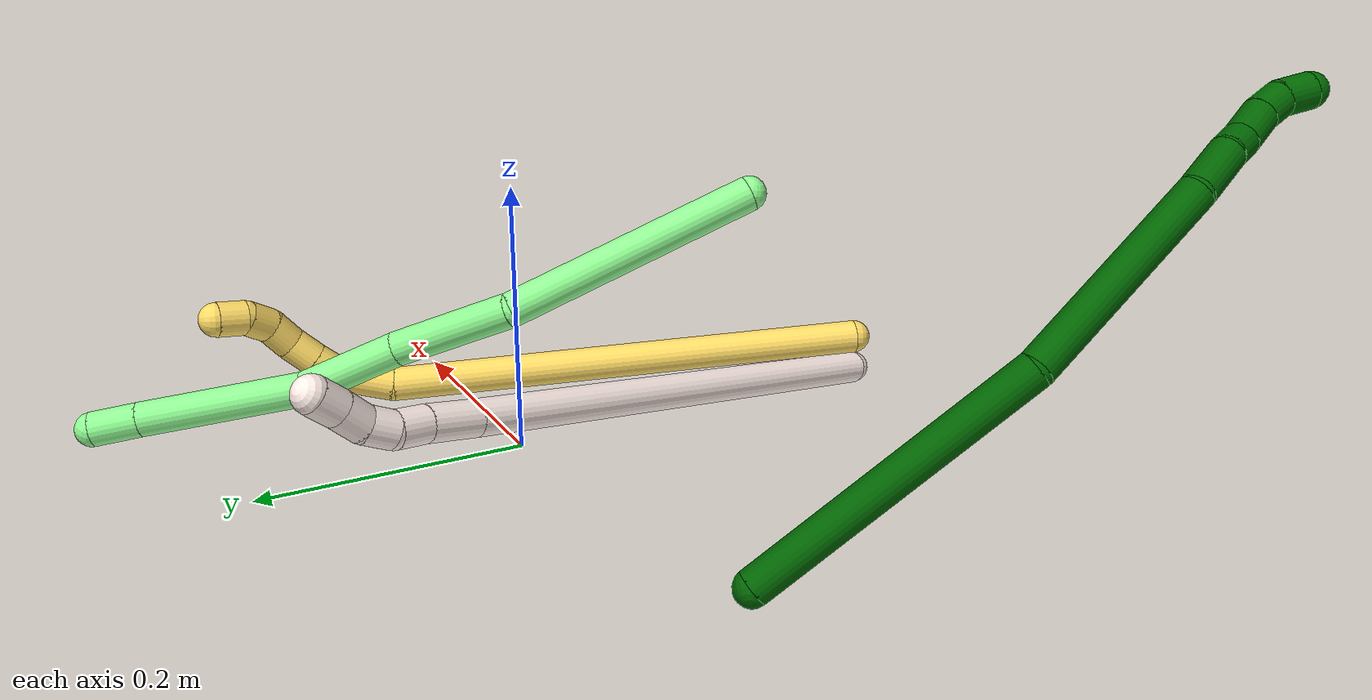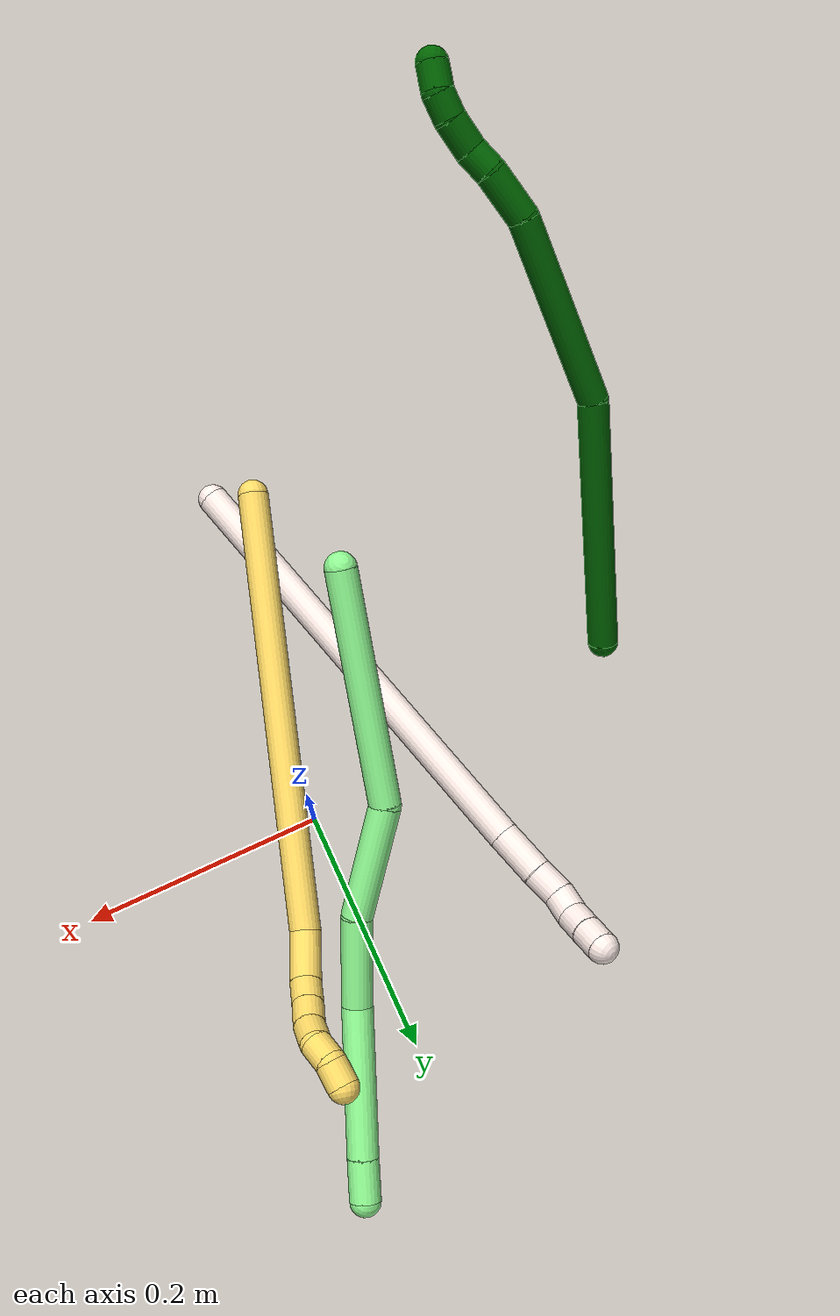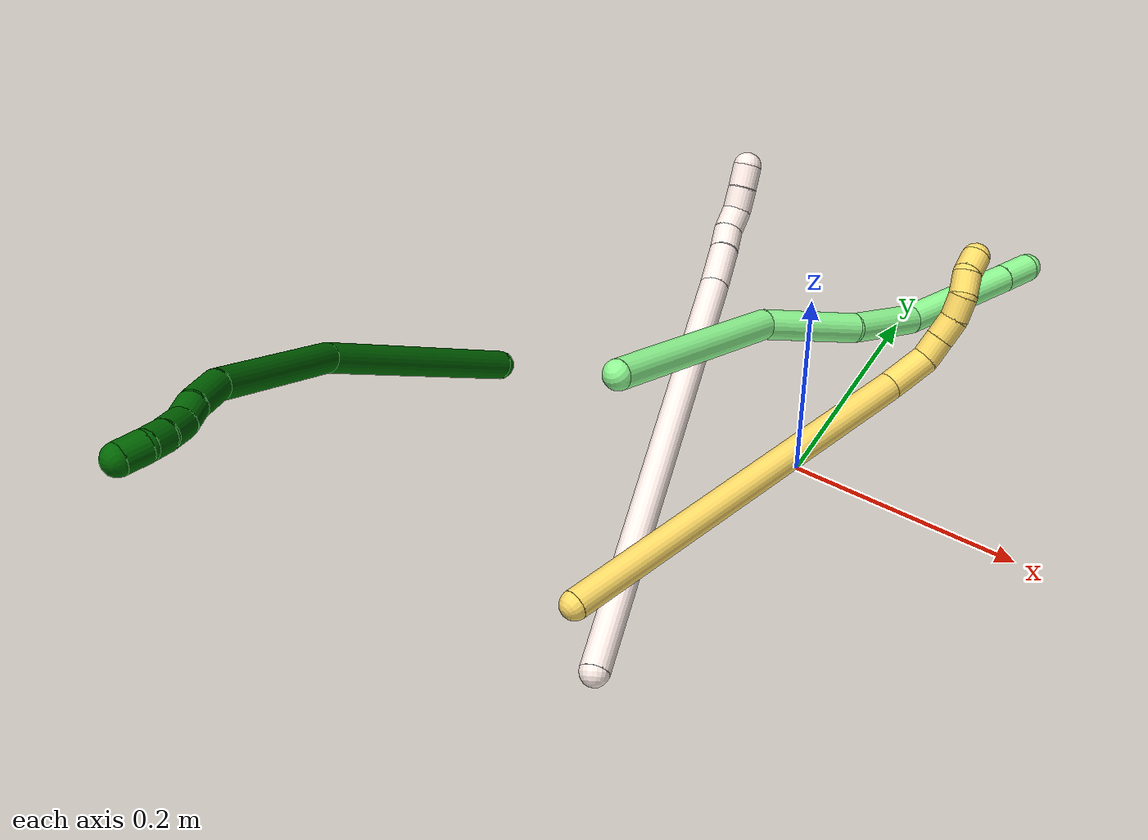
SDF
<sdf version="1.7">
 <world name="default">
  <model name="5">
   <static>0</static>
   <link name="5">
    <collision name="collision-cylinder-e_1_1_4">
     <pose>-0.006708 0.020403 0.176543 -0.115057 -0.037726 0.002173</pose>
     <geometry><cylinder><radius>0.0125</radius><length>0.355689</length></cylinder></geometry>
     <surface>
      <friction><ode><mu>1.16</mu><mu2>1.16</mu2><slip1>0</slip1><slip2>0</slip2></ode></friction>
      <contact><ode><kp>1e+06</kp><kd>1</kd><max_vel>0</max_vel><min_depth>0.001</min_depth></ode></contact>
     </surface>
    </collision>
    <visual name="visual-cylinder-e_1_1_4">
     <pose>-0.006708 0.020403 0.176543 -0.115057 -0.037726 0.002173</pose>
     <geometry><cylinder><radius>0.0125</radius><length>0.355689</length></cylinder></geometry>
     <material><ambient>1 0.858824 0.4 1</ambient></material>
    </visual>
    <collision name="collision-cylinder-e_2_4_5">
     <pose>-0.008625 0.042365 0.372695 -0.079361 0.238878 -0.009529</pose>
     <geometry><cylinder><radius>0.0125</radius><length>0.040491</length></cylinder></geometry>
     <surface>
      <friction><ode><mu>1.16</mu><mu2>1.16</mu2><slip1>0</slip1><slip2>0</slip2></ode></friction>
      <contact><ode><kp>1e+06</kp><kd>1</kd><max_vel>0</max_vel><min_depth>0.001</min_depth></ode></contact>
     </surface>
    </collision>
    <visual name="visual-cylinder-e_2_4_5">
     <pose>-0.008625 0.042365 0.372695 -0.079361 0.238878 -0.009529</pose>
     <geometry><cylinder><radius>0.0125</radius><length>0.040491</length></cylinder></geometry>
     <material><ambient>1 0.858824 0.4 1</ambient></material>
    </visual>
    <collision name="collision-cylinder-e_3_5_6">
     <pose>0.001939 0.04152 0.401085 0.267231 0.565169 0.078017</pose>
     <geometry><cylinder><radius>0.0125</radius><length>0.021562</length></cylinder></geometry>
     <surface>
      <friction><ode><mu>1.16</mu><mu2>1.16</mu2><slip1>0</slip1><slip2>0</slip2></ode></friction>
      <contact><ode><kp>1e+06</kp><kd>1</kd><max_vel>0</max_vel><min_depth>0.001</min_depth></ode></contact>
     </surface>
    </collision>
    <visual name="visual-cylinder-e_3_5_6">
     <pose>0.001939 0.04152 0.401085 0.267231 0.565169 0.078017</pose>
     <geometry><cylinder><radius>0.0125</radius><length>0.021562</length></cylinder></geometry>
     <material><ambient>1 0.858824 0.4 1</ambient></material>
    </visual>
    <collision name="collision-cylinder-e_4_6_7">
     <pose>0.013751 0.036788 0.417982 0.279373 0.620829 0.090145</pose>
     <geometry><cylinder><radius>0.0125</radius><length>0.02076</length></cylinder></geometry>
     <surface>
      <friction><ode><mu>1.16</mu><mu2>1.16</mu2><slip1>0</slip1><slip2>0</slip2></ode></friction>
      <contact><ode><kp>1e+06</kp><kd>1</kd><max_vel>0</max_vel><min_depth>0.001</min_depth></ode></contact>
     </surface>
    </collision>
    <visual name="visual-cylinder-e_4_6_7">
     <pose>0.013751 0.036788 0.417982 0.279373 0.620829 0.090145</pose>
     <geometry><cylinder><radius>0.0125</radius><length>0.02076</length></cylinder></geometry>
     <material><ambient>1 0.858824 0.4 1</ambient></material>
    </visual>
    <collision name="collision-cylinder-e_5_7_8">
     <pose>0.02578 0.029709 0.433113 0.595258 0.615541 0.194393</pose>
     <geometry><cylinder><radius>0.0125</radius><length>0.020753</length></cylinder></geometry>
     <surface>
      <friction><ode><mu>1.16</mu><mu2>1.16</mu2><slip1>0</slip1><slip2>0</slip2></ode></friction>
      <contact><ode><kp>1e+06</kp><kd>1</kd><max_vel>0</max_vel><min_depth>0.001</min_depth></ode></contact>
     </surface>
    </collision>
    <visual name="visual-cylinder-e_5_7_8">
     <pose>0.02578 0.029709 0.433113 0.595258 0.615541 0.194393</pose>
     <geometry><cylinder><radius>0.0125</radius><length>0.020753</length></cylinder></geometry>
     <material><ambient>1 0.858824 0.4 1</ambient></material>
    </visual>
    <collision name="collision-cylinder-e_6_8_9">
     <pose>0.033912 0.018962 0.448158 0.641375 0.210362 0.070102</pose>
     <geometry><cylinder><radius>0.0125</radius><length>0.020497</length></cylinder></geometry>
     <surface>
      <friction><ode><mu>1.16</mu><mu2>1.16</mu2><slip1>0</slip1><slip2>0</slip2></ode></friction>
      <contact><ode><kp>1e+06</kp><kd>1</kd><max_vel>0</max_vel><min_depth>0.001</min_depth></ode></contact>
     </surface>
    </collision>
    <visual name="visual-cylinder-e_6_8_9">
     <pose>0.033912 0.018962 0.448158 0.641375 0.210362 0.070102</pose>
     <geometry><cylinder><radius>0.0125</radius><length>0.020497</length></cylinder></geometry>
     <material><ambient>1 0.858824 0.4 1</ambient></material>
    </visual>
    <collision name="collision-cylinder-e_7_9_2">
     <pose>0.03523 0.010205 0.465895 0.277131 -0.081287 -0.011342</pose>
     <geometry><cylinder><radius>0.0125</radius><length>0.020247</length></cylinder></geometry>
     <surface>
      <friction><ode><mu>1.16</mu><mu2>1.16</mu2><slip1>0</slip1><slip2>0</slip2></ode></friction>
      <contact><ode><kp>1e+06</kp><kd>1</kd><max_vel>0</max_vel><min_depth>0.001</min_depth></ode></contact>
     </surface>
    </collision>
    <visual name="visual-cylinder-e_7_9_2">
     <pose>0.03523 0.010205 0.465895 0.277131 -0.081287 -0.011342</pose>
     <geometry><cylinder><radius>0.0125</radius><length>0.020247</length></cylinder></geometry>
     <material><ambient>1 0.858824 0.4 1</ambient></material>
    </visual>
    <collision name="collision-sphere-2">
     <pose>0.034408 0.007444 0.4756 0 -0 0</pose>
     <geometry><sphere><radius>0.0125</radius></sphere></geometry>
     <surface>
      <friction><ode><mu>1.16</mu><mu2>1.16</mu2><slip1>0</slip1><slip2>0</slip2></ode></friction>
      <contact><ode><kp>1e+06</kp><kd>1</kd><max_vel>0</max_vel><min_depth>0.001</min_depth></ode></contact>
     </surface>
    </collision>
    <visual name="visual-sphere-2">
     <pose>0.034408 0.007444 0.4756 0 -0 0</pose>
     <geometry><sphere><radius>0.0125</radius></sphere></geometry>
     <material><ambient>1 0.858824 0.4 1</ambient></material>
    </visual>
    <collision name="collision-sphere-9">
     <pose>0.036052 0.012965 0.456189 0 -0 0</pose>
     <geometry><sphere><radius>0.0125</radius></sphere></geometry>
     <surface>
      <friction><ode><mu>1.16</mu><mu2>1.16</mu2><slip1>0</slip1><slip2>0</slip2></ode></friction>
      <contact><ode><kp>1e+06</kp><kd>1</kd><max_vel>0</max_vel><min_depth>0.001</min_depth></ode></contact>
     </surface>
    </collision>
    <visual name="visual-sphere-9">
     <pose>0.036052 0.012965 0.456189 0 -0 0</pose>
     <geometry><sphere><radius>0.0125</radius></sphere></geometry>
     <material><ambient>1 0.858824 0.4 1</ambient></material>
    </visual>
    <collision name="collision-sphere-4">
     <pose>-0.013416 0.040805 0.353086 0 -0 0</pose>
     <geometry><sphere><radius>0.0125</radius></sphere></geometry>
     <surface>
      <friction><ode><mu>1.16</mu><mu2>1.16</mu2><slip1>0</slip1><slip2>0</slip2></ode></friction>
      <contact><ode><kp>1e+06</kp><kd>1</kd><max_vel>0</max_vel><min_depth>0.001</min_depth></ode></contact>
     </surface>
    </collision>
    <visual name="visual-sphere-4">
     <pose>-0.013416 0.040805 0.353086 0 -0 0</pose>
     <geometry><sphere><radius>0.0125</radius></sphere></geometry>
     <material><ambient>1 0.858824 0.4 1</ambient></material>
    </visual>
    <collision name="collision-sphere-1">
     <geometry><sphere><radius>0.0125</radius></sphere></geometry>
     <surface>
      <friction><ode><mu>1.16</mu><mu2>1.16</mu2><slip1>0</slip1><slip2>0</slip2></ode></friction>
      <contact><ode><kp>1e+06</kp><kd>1</kd><max_vel>0</max_vel><min_depth>0.001</min_depth></ode></contact>
     </surface>
    </collision>
    <visual name="visual-sphere-1">
     <geometry><sphere><radius>0.0125</radius></sphere></geometry>
     <material><ambient>1 0.858824 0.4 1</ambient></material>
    </visual>
    <collision name="collision-sphere-8">
     <pose>0.031772 0.024958 0.440128 0 -0 0</pose>
     <geometry><sphere><radius>0.0125</radius></sphere></geometry>
     <surface>
      <friction><ode><mu>1.16</mu><mu2>1.16</mu2><slip1>0</slip1><slip2>0</slip2></ode></friction>
      <contact><ode><kp>1e+06</kp><kd>1</kd><max_vel>0</max_vel><min_depth>0.001</min_depth></ode></contact>
     </surface>
    </collision>
    <visual name="visual-sphere-8">
     <pose>0.031772 0.024958 0.440128 0 -0 0</pose>
     <geometry><sphere><radius>0.0125</radius></sphere></geometry>
     <material><ambient>1 0.858824 0.4 1</ambient></material>
    </visual>
    <collision name="collision-sphere-5">
     <pose>-0.003835 0.043924 0.392304 0 -0 0</pose>
     <geometry><sphere><radius>0.0125</radius></sphere></geometry>
     <surface>
      <friction><ode><mu>1.16</mu><mu2>1.16</mu2><slip1>0</slip1><slip2>0</slip2></ode></friction>
      <contact><ode><kp>1e+06</kp><kd>1</kd><max_vel>0</max_vel><min_depth>0.001</min_depth></ode></contact>
     </surface>
    </collision>
    <visual name="visual-sphere-5">
     <pose>-0.003835 0.043924 0.392304 0 -0 0</pose>
     <geometry><sphere><radius>0.0125</radius></sphere></geometry>
     <material><ambient>1 0.858824 0.4 1</ambient></material>
    </visual>
    <collision name="collision-sphere-6">
     <pose>0.007713 0.039116 0.409866 0 -0 0</pose>
     <geometry><sphere><radius>0.0125</radius></sphere></geometry>
     <surface>
      <friction><ode><mu>1.16</mu><mu2>1.16</mu2><slip1>0</slip1><slip2>0</slip2></ode></friction>
      <contact><ode><kp>1e+06</kp><kd>1</kd><max_vel>0</max_vel><min_depth>0.001</min_depth></ode></contact>
     </surface>
    </collision>
    <visual name="visual-sphere-6">
     <pose>0.007713 0.039116 0.409866 0 -0 0</pose>
     <geometry><sphere><radius>0.0125</radius></sphere></geometry>
     <material><ambient>1 0.858824 0.4 1</ambient></material>
    </visual>
    <collision name="collision-sphere-7">
     <pose>0.019789 0.034459 0.426098 0 -0 0</pose>
     <geometry><sphere><radius>0.0125</radius></sphere></geometry>
     <surface>
      <friction><ode><mu>1.16</mu><mu2>1.16</mu2><slip1>0</slip1><slip2>0</slip2></ode></friction>
      <contact><ode><kp>1e+06</kp><kd>1</kd><max_vel>0</max_vel><min_depth>0.001</min_depth></ode></contact>
     </surface>
    </collision>
    <visual name="visual-sphere-7">
     <pose>0.019789 0.034459 0.426098 0 -0 0</pose>
     <geometry><sphere><radius>0.0125</radius></sphere></geometry>
     <material><ambient>1 0.858824 0.4 1</ambient></material>
    </visual>
    <inertial>
     <pose>-0.000929 0.023686 0.245637 0 -0 0</pose>
     <mass>0.5</mass>
     <inertia>
      <ixx>0.003786</ixx>
      <ixy>0</ixy>
      <ixz>0</ixz>
      <iyy>0.003763</iyy>
      <iyz>0</iyz>
      <izz>-0.000255</izz>
     </inertia>
    </inertial>
   </link>
   <pose>-0.06219 -0.257452 0.0643 -1.46651 -1.0723 -0.310194</pose>
  </model>
  <model name="6">
   <static>0</static>
   <link name="6">
    <collision name="collision-cylinder-e_1_1_4">
     <pose>0.093147 0.004115 0.050858 -0.080738 1.06966 -0.047848</pose>
     <geometry><cylinder><radius>0.0125</radius><length>0.212413</length></cylinder></geometry>
     <surface>
      <friction><ode><mu>1.16</mu><mu2>1.16</mu2><slip1>0</slip1><slip2>0</slip2></ode></friction>
      <contact><ode><kp>1e+06</kp><kd>1</kd><max_vel>0</max_vel><min_depth>0.001</min_depth></ode></contact>
     </surface>
    </collision>
    <visual name="visual-cylinder-e_1_1_4">
     <pose>0.093147 0.004115 0.050858 -0.080738 1.06966 -0.047848</pose>
     <geometry><cylinder><radius>0.0125</radius><length>0.212413</length></cylinder></geometry>
     <material><ambient>0 0.392157 0.003922 1</ambient></material>
    </visual>
    <collision name="collision-cylinder-e_2_4_5">
     <pose>0.240012 0.014296 0.157334 -0.108623 0.765063 -0.043741</pose>
     <geometry><cylinder><radius>0.0125</radius><length>0.155125</length></cylinder></geometry>
     <surface>
      <friction><ode><mu>1.16</mu><mu2>1.16</mu2><slip1>0</slip1><slip2>0</slip2></ode></friction>
      <contact><ode><kp>1e+06</kp><kd>1</kd><max_vel>0</max_vel><min_depth>0.001</min_depth></ode></contact>
     </surface>
    </collision>
    <visual name="visual-cylinder-e_2_4_5">
     <pose>0.240012 0.014296 0.157334 -0.108623 0.765063 -0.043741</pose>
     <geometry><cylinder><radius>0.0125</radius><length>0.155125</length></cylinder></geometry>
     <material><ambient>0 0.392157 0.003922 1</ambient></material>
    </visual>
    <collision name="collision-cylinder-e_3_5_6">
     <pose>0.304114 0.024716 0.230306 -0.245885 0.525865 -0.066494</pose>
     <geometry><cylinder><radius>0.0125</radius><length>0.04137</length></cylinder></geometry>
     <surface>
      <friction><ode><mu>1.16</mu><mu2>1.16</mu2><slip1>0</slip1><slip2>0</slip2></ode></friction>
      <contact><ode><kp>1e+06</kp><kd>1</kd><max_vel>0</max_vel><min_depth>0.001</min_depth></ode></contact>
     </surface>
    </collision>
    <visual name="visual-cylinder-e_3_5_6">
     <pose>0.304114 0.024716 0.230306 -0.245885 0.525865 -0.066494</pose>
     <geometry><cylinder><radius>0.0125</radius><length>0.04137</length></cylinder></geometry>
     <material><ambient>0 0.392157 0.003922 1</ambient></material>
    </visual>
    <collision name="collision-cylinder-e_4_6_7">
     <pose>0.318549 0.033309 0.256713 -0.43782 0.385049 -0.086684</pose>
     <geometry><cylinder><radius>0.0125</radius><length>0.021576</length></cylinder></geometry>
     <surface>
      <friction><ode><mu>1.16</mu><mu2>1.16</mu2><slip1>0</slip1><slip2>0</slip2></ode></friction>
      <contact><ode><kp>1e+06</kp><kd>1</kd><max_vel>0</max_vel><min_depth>0.001</min_depth></ode></contact>
     </surface>
    </collision>
    <visual name="visual-cylinder-e_4_6_7">
     <pose>0.318549 0.033309 0.256713 -0.43782 0.385049 -0.086684</pose>
     <geometry><cylinder><radius>0.0125</radius><length>0.021576</length></cylinder></geometry>
     <material><ambient>0 0.392157 0.003922 1</ambient></material>
    </visual>
    <collision name="collision-cylinder-e_5_7_8">
     <pose>0.329877 0.039853 0.277143 -0.199866 0.559948 -0.057643</pose>
     <geometry><cylinder><radius>0.0125</radius><length>0.027396</length></cylinder></geometry>
     <surface>
      <friction><ode><mu>1.16</mu><mu2>1.16</mu2><slip1>0</slip1><slip2>0</slip2></ode></friction>
      <contact><ode><kp>1e+06</kp><kd>1</kd><max_vel>0</max_vel><min_depth>0.001</min_depth></ode></contact>
     </surface>
    </collision>
    <visual name="visual-cylinder-e_5_7_8">
     <pose>0.329877 0.039853 0.277143 -0.199866 0.559948 -0.057643</pose>
     <geometry><cylinder><radius>0.0125</radius><length>0.027396</length></cylinder></geometry>
     <material><ambient>0 0.392157 0.003922 1</ambient></material>
    </visual>
    <collision name="collision-cylinder-e_6_8_9">
     <pose>0.34385 0.04481 0.295779 -0.350367 0.713935 -0.13183</pose>
     <geometry><cylinder><radius>0.0125</radius><length>0.020457</length></cylinder></geometry>
     <surface>
      <friction><ode><mu>1.16</mu><mu2>1.16</mu2><slip1>0</slip1><slip2>0</slip2></ode></friction>
      <contact><ode><kp>1e+06</kp><kd>1</kd><max_vel>0</max_vel><min_depth>0.001</min_depth></ode></contact>
     </surface>
    </collision>
    <visual name="visual-cylinder-e_6_8_9">
     <pose>0.34385 0.04481 0.295779 -0.350367 0.713935 -0.13183</pose>
     <geometry><cylinder><radius>0.0125</radius><length>0.020457</length></cylinder></geometry>
     <material><ambient>0 0.392157 0.003922 1</ambient></material>
    </visual>
    <collision name="collision-cylinder-e_7_9_2">
     <pose>0.35889 0.052625 0.307631 -0.843802 0.879203 -0.416078</pose>
     <geometry><cylinder><radius>0.0125</radius><length>0.021663</length></cylinder></geometry>
     <surface>
      <friction><ode><mu>1.16</mu><mu2>1.16</mu2><slip1>0</slip1><slip2>0</slip2></ode></friction>
      <contact><ode><kp>1e+06</kp><kd>1</kd><max_vel>0</max_vel><min_depth>0.001</min_depth></ode></contact>
     </surface>
    </collision>
    <visual name="visual-cylinder-e_7_9_2">
     <pose>0.35889 0.052625 0.307631 -0.843802 0.879203 -0.416078</pose>
     <geometry><cylinder><radius>0.0125</radius><length>0.021663</length></cylinder></geometry>
     <material><ambient>0 0.392157 0.003922 1</ambient></material>
    </visual>
    <collision name="collision-sphere-2">
     <pose>0.367233 0.057787 0.312223 0 -0 0</pose>
     <geometry><sphere><radius>0.0125</radius></sphere></geometry>
     <surface>
      <friction><ode><mu>1.16</mu><mu2>1.16</mu2><slip1>0</slip1><slip2>0</slip2></ode></friction>
      <contact><ode><kp>1e+06</kp><kd>1</kd><max_vel>0</max_vel><min_depth>0.001</min_depth></ode></contact>
     </surface>
    </collision>
    <visual name="visual-sphere-2">
     <pose>0.367233 0.057787 0.312223 0 -0 0</pose>
     <geometry><sphere><radius>0.0125</radius></sphere></geometry>
     <material><ambient>0 0.392157 0.003922 1</ambient></material>
    </visual>
    <collision name="collision-sphere-9">
     <pose>0.350548 0.047464 0.30304 0 -0 0</pose>
     <geometry><sphere><radius>0.0125</radius></sphere></geometry>
     <surface>
      <friction><ode><mu>1.16</mu><mu2>1.16</mu2><slip1>0</slip1><slip2>0</slip2></ode></friction>
      <contact><ode><kp>1e+06</kp><kd>1</kd><max_vel>0</max_vel><min_depth>0.001</min_depth></ode></contact>
     </surface>
    </collision>
    <visual name="visual-sphere-9">
     <pose>0.350548 0.047464 0.30304 0 -0 0</pose>
     <geometry><sphere><radius>0.0125</radius></sphere></geometry>
     <material><ambient>0 0.392157 0.003922 1</ambient></material>
    </visual>
    <collision name="collision-sphere-4">
     <pose>0.186294 0.00823 0.101715 0 -0 0</pose>
     <geometry><sphere><radius>0.0125</radius></sphere></geometry>
     <surface>
      <friction><ode><mu>1.16</mu><mu2>1.16</mu2><slip1>0</slip1><slip2>0</slip2></ode></friction>
      <contact><ode><kp>1e+06</kp><kd>1</kd><max_vel>0</max_vel><min_depth>0.001</min_depth></ode></contact>
     </surface>
    </collision>
    <visual name="visual-sphere-4">
     <pose>0.186294 0.00823 0.101715 0 -0 0</pose>
     <geometry><sphere><radius>0.0125</radius></sphere></geometry>
     <material><ambient>0 0.392157 0.003922 1</ambient></material>
    </visual>
    <collision name="collision-sphere-1">
     <geometry><sphere><radius>0.0125</radius></sphere></geometry>
     <surface>
      <friction><ode><mu>1.16</mu><mu2>1.16</mu2><slip1>0</slip1><slip2>0</slip2></ode></friction>
      <contact><ode><kp>1e+06</kp><kd>1</kd><max_vel>0</max_vel><min_depth>0.001</min_depth></ode></contact>
     </surface>
    </collision>
    <visual name="visual-sphere-1">
     <geometry><sphere><radius>0.0125</radius></sphere></geometry>
     <material><ambient>0 0.392157 0.003922 1</ambient></material>
    </visual>
    <collision name="collision-sphere-8">
     <pose>0.337152 0.042157 0.288519 0 -0 0</pose>
     <geometry><sphere><radius>0.0125</radius></sphere></geometry>
     <surface>
      <friction><ode><mu>1.16</mu><mu2>1.16</mu2><slip1>0</slip1><slip2>0</slip2></ode></friction>
      <contact><ode><kp>1e+06</kp><kd>1</kd><max_vel>0</max_vel><min_depth>0.001</min_depth></ode></contact>
     </surface>
    </collision>
    <visual name="visual-sphere-8">
     <pose>0.337152 0.042157 0.288519 0 -0 0</pose>
     <geometry><sphere><radius>0.0125</radius></sphere></geometry>
     <material><ambient>0 0.392157 0.003922 1</ambient></material>
    </visual>
    <collision name="collision-sphere-5">
     <pose>0.293731 0.020361 0.212954 0 -0 0</pose>
     <geometry><sphere><radius>0.0125</radius></sphere></geometry>
     <surface>
      <friction><ode><mu>1.16</mu><mu2>1.16</mu2><slip1>0</slip1><slip2>0</slip2></ode></friction>
      <contact><ode><kp>1e+06</kp><kd>1</kd><max_vel>0</max_vel><min_depth>0.001</min_depth></ode></contact>
     </surface>
    </collision>
    <visual name="visual-sphere-5">
     <pose>0.293731 0.020361 0.212954 0 -0 0</pose>
     <geometry><sphere><radius>0.0125</radius></sphere></geometry>
     <material><ambient>0 0.392157 0.003922 1</ambient></material>
    </visual>
    <collision name="collision-sphere-6">
     <pose>0.314497 0.02907 0.247658 0 -0 0</pose>
     <geometry><sphere><radius>0.0125</radius></sphere></geometry>
     <surface>
      <friction><ode><mu>1.16</mu><mu2>1.16</mu2><slip1>0</slip1><slip2>0</slip2></ode></friction>
      <contact><ode><kp>1e+06</kp><kd>1</kd><max_vel>0</max_vel><min_depth>0.001</min_depth></ode></contact>
     </surface>
    </collision>
    <visual name="visual-sphere-6">
     <pose>0.314497 0.02907 0.247658 0 -0 0</pose>
     <geometry><sphere><radius>0.0125</radius></sphere></geometry>
     <material><ambient>0 0.392157 0.003922 1</ambient></material>
    </visual>
    <collision name="collision-sphere-7">
     <pose>0.322601 0.037548 0.265768 0 -0 0</pose>
     <geometry><sphere><radius>0.0125</radius></sphere></geometry>
     <surface>
      <friction><ode><mu>1.16</mu><mu2>1.16</mu2><slip1>0</slip1><slip2>0</slip2></ode></friction>
      <contact><ode><kp>1e+06</kp><kd>1</kd><max_vel>0</max_vel><min_depth>0.001</min_depth></ode></contact>
     </surface>
    </collision>
    <visual name="visual-sphere-7">
     <pose>0.322601 0.037548 0.265768 0 -0 0</pose>
     <geometry><sphere><radius>0.0125</radius></sphere></geometry>
     <material><ambient>0 0.392157 0.003922 1</ambient></material>
    </visual>
    <inertial>
     <pose>0.200636 0.015963 0.141167 0 -0 0</pose>
     <mass>0.5</mass>
     <inertia>
      <ixx>0.000627</ixx>
      <ixy>0</ixy>
      <ixz>0</ixz>
      <iyy>0.001111</iyy>
      <iyz>0</iyz>
      <izz>-0.000971</izz>
     </inertia>
    </inertial>
   </link>
   <pose>-0.280109 -0.034861 0.011498 -1.07703 -0.522586 -2.46009</pose>
  </model>
  <model name="11">
   <static>0</static>
   <link name="11">
    <collision name="collision-cylinder-e_1_1_4">
     <pose>-0.078839 0.026637 0.169111 -0.156226 -0.431565 0.034311</pose>
     <geometry><cylinder><radius>0.0125</radius><length>0.376955</length></cylinder></geometry>
     <surface>
      <friction><ode><mu>1.16</mu><mu2>1.16</mu2><slip1>0</slip1><slip2>0</slip2></ode></friction>
      <contact><ode><kp>1e+06</kp><kd>1</kd><max_vel>0</max_vel><min_depth>0.001</min_depth></ode></contact>
     </surface>
    </collision>
    <visual name="visual-cylinder-e_1_1_4">
     <pose>-0.078839 0.026637 0.169111 -0.156226 -0.431565 0.034311</pose>
     <geometry><cylinder><radius>0.0125</radius><length>0.376955</length></cylinder></geometry>
     <material><ambient>1 0.933333 0.909804 1</ambient></material>
    </visual>
    <collision name="collision-cylinder-e_2_4_5">
     <pose>-0.16523 0.055616 0.355681 -0.133399 -0.405058 0.027432</pose>
     <geometry><cylinder><radius>0.0125</radius><length>0.03833</length></cylinder></geometry>
     <surface>
      <friction><ode><mu>1.16</mu><mu2>1.16</mu2><slip1>0</slip1><slip2>0</slip2></ode></friction>
      <contact><ode><kp>1e+06</kp><kd>1</kd><max_vel>0</max_vel><min_depth>0.001</min_depth></ode></contact>
     </surface>
    </collision>
    <visual name="visual-cylinder-e_2_4_5">
     <pose>-0.16523 0.055616 0.355681 -0.133399 -0.405058 0.027432</pose>
     <geometry><cylinder><radius>0.0125</radius><length>0.03833</length></cylinder></geometry>
     <material><ambient>1 0.933333 0.909804 1</ambient></material>
    </visual>
    <collision name="collision-cylinder-e_3_5_6">
     <pose>-0.178026 0.058734 0.383758 -0.072843 -0.457585 0.01697</pose>
     <geometry><cylinder><radius>0.0125</radius><length>0.023738</length></cylinder></geometry>
     <surface>
      <friction><ode><mu>1.16</mu><mu2>1.16</mu2><slip1>0</slip1><slip2>0</slip2></ode></friction>
      <contact><ode><kp>1e+06</kp><kd>1</kd><max_vel>0</max_vel><min_depth>0.001</min_depth></ode></contact>
     </surface>
    </collision>
    <visual name="visual-cylinder-e_3_5_6">
     <pose>-0.178026 0.058734 0.383758 -0.072843 -0.457585 0.01697</pose>
     <geometry><cylinder><radius>0.0125</radius><length>0.023738</length></cylinder></geometry>
     <material><ambient>1 0.933333 0.909804 1</ambient></material>
    </visual>
    <collision name="collision-cylinder-e_4_6_7">
     <pose>-0.184905 0.06248 0.403925 -0.301724 -0.162105 0.024696</pose>
     <geometry><cylinder><radius>0.0125</radius><length>0.020264</length></cylinder></geometry>
     <surface>
      <friction><ode><mu>1.16</mu><mu2>1.16</mu2><slip1>0</slip1><slip2>0</slip2></ode></friction>
      <contact><ode><kp>1e+06</kp><kd>1</kd><max_vel>0</max_vel><min_depth>0.001</min_depth></ode></contact>
     </surface>
    </collision>
    <visual name="visual-cylinder-e_4_6_7">
     <pose>-0.184905 0.06248 0.403925 -0.301724 -0.162105 0.024696</pose>
     <geometry><cylinder><radius>0.0125</radius><length>0.020264</length></cylinder></geometry>
     <material><ambient>1 0.933333 0.909804 1</ambient></material>
    </visual>
    <collision name="collision-cylinder-e_5_7_8">
     <pose>-0.184987 0.067368 0.423511 -0.188622 0.150783 -0.01429</pose>
     <geometry><cylinder><radius>0.0125</radius><length>0.020675</length></cylinder></geometry>
     <surface>
      <friction><ode><mu>1.16</mu><mu2>1.16</mu2><slip1>0</slip1><slip2>0</slip2></ode></friction>
      <contact><ode><kp>1e+06</kp><kd>1</kd><max_vel>0</max_vel><min_depth>0.001</min_depth></ode></contact>
     </surface>
    </collision>
    <visual name="visual-cylinder-e_5_7_8">
     <pose>-0.184987 0.067368 0.423511 -0.188622 0.150783 -0.01429</pose>
     <geometry><cylinder><radius>0.0125</radius><length>0.020675</length></cylinder></geometry>
     <material><ambient>1 0.933333 0.909804 1</ambient></material>
    </visual>
    <collision name="collision-cylinder-e_6_8_2">
     <pose>-0.182485 0.070905 0.443392 -0.163216 0.094893 -0.007767</pose>
     <geometry><cylinder><radius>0.0125</radius><length>0.020039</length></cylinder></geometry>
     <surface>
      <friction><ode><mu>1.16</mu><mu2>1.16</mu2><slip1>0</slip1><slip2>0</slip2></ode></friction>
      <contact><ode><kp>1e+06</kp><kd>1</kd><max_vel>0</max_vel><min_depth>0.001</min_depth></ode></contact>
     </surface>
    </collision>
    <visual name="visual-cylinder-e_6_8_2">
     <pose>-0.182485 0.070905 0.443392 -0.163216 0.094893 -0.007767</pose>
     <geometry><cylinder><radius>0.0125</radius><length>0.020039</length></cylinder></geometry>
     <material><ambient>1 0.933333 0.909804 1</ambient></material>
    </visual>
    <collision name="collision-sphere-2">
     <pose>-0.181536 0.072526 0.453233 0 -0 0</pose>
     <geometry><sphere><radius>0.0125</radius></sphere></geometry>
     <surface>
      <friction><ode><mu>1.16</mu><mu2>1.16</mu2><slip1>0</slip1><slip2>0</slip2></ode></friction>
      <contact><ode><kp>1e+06</kp><kd>1</kd><max_vel>0</max_vel><min_depth>0.001</min_depth></ode></contact>
     </surface>
    </collision>
    <visual name="visual-sphere-2">
     <pose>-0.181536 0.072526 0.453233 0 -0 0</pose>
     <geometry><sphere><radius>0.0125</radius></sphere></geometry>
     <material><ambient>1 0.933333 0.909804 1</ambient></material>
    </visual>
    <collision name="collision-sphere-4">
     <pose>-0.157678 0.053273 0.338223 0 -0 0</pose>
     <geometry><sphere><radius>0.0125</radius></sphere></geometry>
     <surface>
      <friction><ode><mu>1.16</mu><mu2>1.16</mu2><slip1>0</slip1><slip2>0</slip2></ode></friction>
      <contact><ode><kp>1e+06</kp><kd>1</kd><max_vel>0</max_vel><min_depth>0.001</min_depth></ode></contact>
     </surface>
    </collision>
    <visual name="visual-sphere-4">
     <pose>-0.157678 0.053273 0.338223 0 -0 0</pose>
     <geometry><sphere><radius>0.0125</radius></sphere></geometry>
     <material><ambient>1 0.933333 0.909804 1</ambient></material>
    </visual>
    <collision name="collision-sphere-1">
     <geometry><sphere><radius>0.0125</radius></sphere></geometry>
     <surface>
      <friction><ode><mu>1.16</mu><mu2>1.16</mu2><slip1>0</slip1><slip2>0</slip2></ode></friction>
      <contact><ode><kp>1e+06</kp><kd>1</kd><max_vel>0</max_vel><min_depth>0.001</min_depth></ode></contact>
     </surface>
    </collision>
    <visual name="visual-sphere-1">
     <geometry><sphere><radius>0.0125</radius></sphere></geometry>
     <material><ambient>1 0.933333 0.909804 1</ambient></material>
    </visual>
    <collision name="collision-sphere-8">
     <pose>-0.183434 0.069284 0.43355 0 -0 0</pose>
     <geometry><sphere><radius>0.0125</radius></sphere></geometry>
     <surface>
      <friction><ode><mu>1.16</mu><mu2>1.16</mu2><slip1>0</slip1><slip2>0</slip2></ode></friction>
      <contact><ode><kp>1e+06</kp><kd>1</kd><max_vel>0</max_vel><min_depth>0.001</min_depth></ode></contact>
     </surface>
    </collision>
    <visual name="visual-sphere-8">
     <pose>-0.183434 0.069284 0.43355 0 -0 0</pose>
     <geometry><sphere><radius>0.0125</radius></sphere></geometry>
     <material><ambient>1 0.933333 0.909804 1</ambient></material>
    </visual>
    <collision name="collision-sphere-5">
     <pose>-0.172782 0.057959 0.373138 0 -0 0</pose>
     <geometry><sphere><radius>0.0125</radius></sphere></geometry>
     <surface>
      <friction><ode><mu>1.16</mu><mu2>1.16</mu2><slip1>0</slip1><slip2>0</slip2></ode></friction>
      <contact><ode><kp>1e+06</kp><kd>1</kd><max_vel>0</max_vel><min_depth>0.001</min_depth></ode></contact>
     </surface>
    </collision>
    <visual name="visual-sphere-5">
     <pose>-0.172782 0.057959 0.373138 0 -0 0</pose>
     <geometry><sphere><radius>0.0125</radius></sphere></geometry>
     <material><ambient>1 0.933333 0.909804 1</ambient></material>
    </visual>
    <collision name="collision-sphere-6">
     <pose>-0.18327 0.059509 0.394378 0 -0 0</pose>
     <geometry><sphere><radius>0.0125</radius></sphere></geometry>
     <surface>
      <friction><ode><mu>1.16</mu><mu2>1.16</mu2><slip1>0</slip1><slip2>0</slip2></ode></friction>
      <contact><ode><kp>1e+06</kp><kd>1</kd><max_vel>0</max_vel><min_depth>0.001</min_depth></ode></contact>
     </surface>
    </collision>
    <visual name="visual-sphere-6">
     <pose>-0.18327 0.059509 0.394378 0 -0 0</pose>
     <geometry><sphere><radius>0.0125</radius></sphere></geometry>
     <material><ambient>1 0.933333 0.909804 1</ambient></material>
    </visual>
    <collision name="collision-sphere-7">
     <pose>-0.18654 0.065452 0.413472 0 -0 0</pose>
     <geometry><sphere><radius>0.0125</radius></sphere></geometry>
     <surface>
      <friction><ode><mu>1.16</mu><mu2>1.16</mu2><slip1>0</slip1><slip2>0</slip2></ode></friction>
      <contact><ode><kp>1e+06</kp><kd>1</kd><max_vel>0</max_vel><min_depth>0.001</min_depth></ode></contact>
     </surface>
    </collision>
    <visual name="visual-sphere-7">
     <pose>-0.18654 0.065452 0.413472 0 -0 0</pose>
     <geometry><sphere><radius>0.0125</radius></sphere></geometry>
     <material><ambient>1 0.933333 0.909804 1</ambient></material>
    </visual>
    <inertial>
     <pose>-0.103012 0.035293 0.224632 0 -0 0</pose>
     <mass>0.5</mass>
     <inertia>
      <ixx>0.004203</ixx>
      <ixy>0</ixy>
      <ixz>0</ixz>
      <iyy>0.004589</iyy>
      <iyz>0</iyz>
      <izz>0.001277</izz>
     </inertia>
    </inertial>
   </link>
   <pose>-0.032317 -0.279154 0.024334 0.109288 -0.970231 -1.26823</pose>
  </model>
  <model name="13">
   <static>0</static>
   <link name="13">
    <collision name="collision-cylinder-e_1_1_4">
     <pose>0.005931 0.072549 0.056992 -0.904921 0.064196 -0.031214</pose>
     <geometry><cylinder><radius>0.0125</radius><length>0.184896</length></cylinder></geometry>
     <surface>
      <friction><ode><mu>1.16</mu><mu2>1.16</mu2><slip1>0</slip1><slip2>0</slip2></ode></friction>
      <contact><ode><kp>1e+06</kp><kd>1</kd><max_vel>0</max_vel><min_depth>0.001</min_depth></ode></contact>
     </surface>
    </collision>
    <visual name="visual-cylinder-e_1_1_4">
     <pose>0.005931 0.072549 0.056992 -0.904921 0.064196 -0.031214</pose>
     <geometry><cylinder><radius>0.0125</radius><length>0.184896</length></cylinder></geometry>
     <material><ambient>0.564706 0.984314 0.572549 1</ambient></material>
    </visual>
    <collision name="collision-cylinder-e_2_4_5">
     <pose>-0.003043 0.175275 0.145023 -0.771304 -0.331592 0.135659</pose>
     <geometry><cylinder><radius>0.0125</radius><length>0.091568</length></cylinder></geometry>
     <surface>
      <friction><ode><mu>1.16</mu><mu2>1.16</mu2><slip1>0</slip1><slip2>0</slip2></ode></friction>
      <contact><ode><kp>1e+06</kp><kd>1</kd><max_vel>0</max_vel><min_depth>0.001</min_depth></ode></contact>
     </surface>
    </collision>
    <visual name="visual-cylinder-e_2_4_5">
     <pose>-0.003043 0.175275 0.145023 -0.771304 -0.331592 0.135659</pose>
     <geometry><cylinder><radius>0.0125</radius><length>0.091568</length></cylinder></geometry>
     <material><ambient>0.564706 0.984314 0.572549 1</ambient></material>
    </visual>
    <collision name="collision-cylinder-e_3_5_6">
     <pose>-0.021607 0.232576 0.200009 -0.847542 -0.100756 0.045482</pose>
     <geometry><cylinder><radius>0.0125</radius><length>0.072735</length></cylinder></geometry>
     <surface>
      <friction><ode><mu>1.16</mu><mu2>1.16</mu2><slip1>0</slip1><slip2>0</slip2></ode></friction>
      <contact><ode><kp>1e+06</kp><kd>1</kd><max_vel>0</max_vel><min_depth>0.001</min_depth></ode></contact>
     </surface>
    </collision>
    <visual name="visual-cylinder-e_3_5_6">
     <pose>-0.021607 0.232576 0.200009 -0.847542 -0.100756 0.045482</pose>
     <geometry><cylinder><radius>0.0125</radius><length>0.072735</length></cylinder></geometry>
     <material><ambient>0.564706 0.984314 0.572549 1</ambient></material>
    </visual>
    <collision name="collision-cylinder-e_4_6_7">
     <pose>-0.03374 0.311127 0.250708 -1.09112 -0.145181 0.088224</pose>
     <geometry><cylinder><radius>0.0125</radius><length>0.11717</length></cylinder></geometry>
     <surface>
      <friction><ode><mu>1.16</mu><mu2>1.16</mu2><slip1>0</slip1><slip2>0</slip2></ode></friction>
      <contact><ode><kp>1e+06</kp><kd>1</kd><max_vel>0</max_vel><min_depth>0.001</min_depth></ode></contact>
     </surface>
    </collision>
    <visual name="visual-cylinder-e_4_6_7">
     <pose>-0.03374 0.311127 0.250708 -1.09112 -0.145181 0.088224</pose>
     <geometry><cylinder><radius>0.0125</radius><length>0.11717</length></cylinder></geometry>
     <material><ambient>0.564706 0.984314 0.572549 1</ambient></material>
    </visual>
    <collision name="collision-cylinder-e_5_7_2">
     <pose>-0.044284 0.377306 0.285261 -1.08437 -0.123309 0.074342</pose>
     <geometry><cylinder><radius>0.0125</radius><length>0.033631</length></cylinder></geometry>
     <surface>
      <friction><ode><mu>1.16</mu><mu2>1.16</mu2><slip1>0</slip1><slip2>0</slip2></ode></friction>
      <contact><ode><kp>1e+06</kp><kd>1</kd><max_vel>0</max_vel><min_depth>0.001</min_depth></ode></contact>
     </surface>
    </collision>
    <visual name="visual-cylinder-e_5_7_2">
     <pose>-0.044284 0.377306 0.285261 -1.08437 -0.123309 0.074342</pose>
     <geometry><cylinder><radius>0.0125</radius><length>0.033631</length></cylinder></geometry>
     <material><ambient>0.564706 0.984314 0.572549 1</ambient></material>
    </visual>
    <collision name="collision-sphere-2">
     <pose>-0.046352 0.392058 0.293062 0 -0 0</pose>
     <geometry><sphere><radius>0.0125</radius></sphere></geometry>
     <surface>
      <friction><ode><mu>1.16</mu><mu2>1.16</mu2><slip1>0</slip1><slip2>0</slip2></ode></friction>
      <contact><ode><kp>1e+06</kp><kd>1</kd><max_vel>0</max_vel><min_depth>0.001</min_depth></ode></contact>
     </surface>
    </collision>
    <visual name="visual-sphere-2">
     <pose>-0.046352 0.392058 0.293062 0 -0 0</pose>
     <geometry><sphere><radius>0.0125</radius></sphere></geometry>
     <material><ambient>0.564706 0.984314 0.572549 1</ambient></material>
    </visual>
    <collision name="collision-sphere-7">
     <pose>-0.042216 0.362554 0.27746 0 -0 0</pose>
     <geometry><sphere><radius>0.0125</radius></sphere></geometry>
     <surface>
      <friction><ode><mu>1.16</mu><mu2>1.16</mu2><slip1>0</slip1><slip2>0</slip2></ode></friction>
      <contact><ode><kp>1e+06</kp><kd>1</kd><max_vel>0</max_vel><min_depth>0.001</min_depth></ode></contact>
     </surface>
    </collision>
    <visual name="visual-sphere-7">
     <pose>-0.042216 0.362554 0.27746 0 -0 0</pose>
     <geometry><sphere><radius>0.0125</radius></sphere></geometry>
     <material><ambient>0.564706 0.984314 0.572549 1</ambient></material>
    </visual>
    <collision name="collision-sphere-6">
     <pose>-0.025265 0.259701 0.223956 0 -0 0</pose>
     <geometry><sphere><radius>0.0125</radius></sphere></geometry>
     <surface>
      <friction><ode><mu>1.16</mu><mu2>1.16</mu2><slip1>0</slip1><slip2>0</slip2></ode></friction>
      <contact><ode><kp>1e+06</kp><kd>1</kd><max_vel>0</max_vel><min_depth>0.001</min_depth></ode></contact>
     </surface>
    </collision>
    <visual name="visual-sphere-6">
     <pose>-0.025265 0.259701 0.223956 0 -0 0</pose>
     <geometry><sphere><radius>0.0125</radius></sphere></geometry>
     <material><ambient>0.564706 0.984314 0.572549 1</ambient></material>
    </visual>
    <collision name="collision-sphere-5">
     <pose>-0.017948 0.205451 0.176062 0 -0 0</pose>
     <geometry><sphere><radius>0.0125</radius></sphere></geometry>
     <surface>
      <friction><ode><mu>1.16</mu><mu2>1.16</mu2><slip1>0</slip1><slip2>0</slip2></ode></friction>
      <contact><ode><kp>1e+06</kp><kd>1</kd><max_vel>0</max_vel><min_depth>0.001</min_depth></ode></contact>
     </surface>
    </collision>
    <visual name="visual-sphere-5">
     <pose>-0.017948 0.205451 0.176062 0 -0 0</pose>
     <geometry><sphere><radius>0.0125</radius></sphere></geometry>
     <material><ambient>0.564706 0.984314 0.572549 1</ambient></material>
    </visual>
    <collision name="collision-sphere-1">
     <geometry><sphere><radius>0.0125</radius></sphere></geometry>
     <surface>
      <friction><ode><mu>1.16</mu><mu2>1.16</mu2><slip1>0</slip1><slip2>0</slip2></ode></friction>
      <contact><ode><kp>1e+06</kp><kd>1</kd><max_vel>0</max_vel><min_depth>0.001</min_depth></ode></contact>
     </surface>
    </collision>
    <visual name="visual-sphere-1">
     <geometry><sphere><radius>0.0125</radius></sphere></geometry>
     <material><ambient>0.564706 0.984314 0.572549 1</ambient></material>
    </visual>
    <collision name="collision-sphere-4">
     <pose>0.011861 0.145099 0.113984 0 -0 0</pose>
     <geometry><sphere><radius>0.0125</radius></sphere></geometry>
     <surface>
      <friction><ode><mu>1.16</mu><mu2>1.16</mu2><slip1>0</slip1><slip2>0</slip2></ode></friction>
      <contact><ode><kp>1e+06</kp><kd>1</kd><max_vel>0</max_vel><min_depth>0.001</min_depth></ode></contact>
     </surface>
    </collision>
    <visual name="visual-sphere-4">
     <pose>0.011861 0.145099 0.113984 0 -0 0</pose>
     <geometry><sphere><radius>0.0125</radius></sphere></geometry>
     <material><ambient>0.564706 0.984314 0.572549 1</ambient></material>
    </visual>
    <inertial>
     <pose>-0.012393 0.191048 0.154667 0 -0 0</pose>
     <mass>0.5</mass>
     <inertia>
      <ixx>0.000774</ixx>
      <ixy>0</ixy>
      <ixz>0</ixz>
      <iyy>0.000508</iyy>
      <iyz>0</iyz>
      <izz>-0.00058</izz>
     </inertia>
    </inertial>
   </link>
   <pose>-0.090753 -0.142094 0.199202 2.86831 0.258101 2.9478</pose>
  </model>
 </world>
</sdf>
